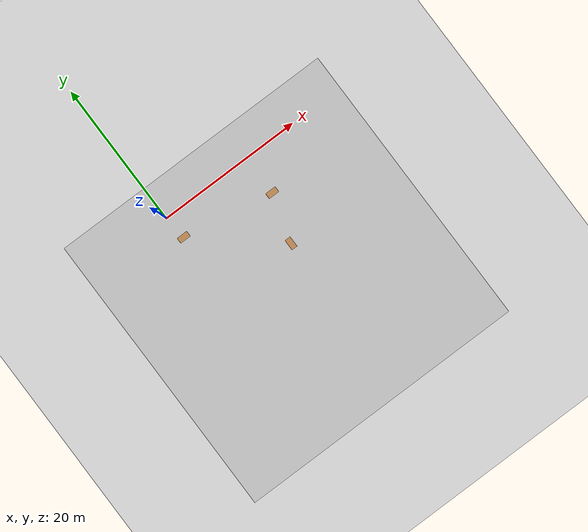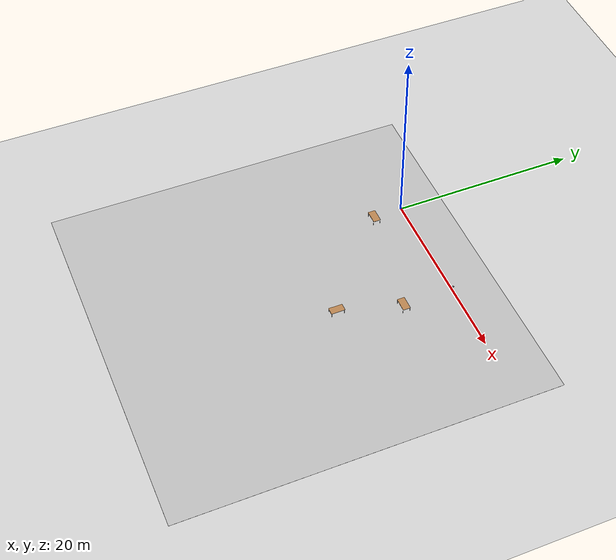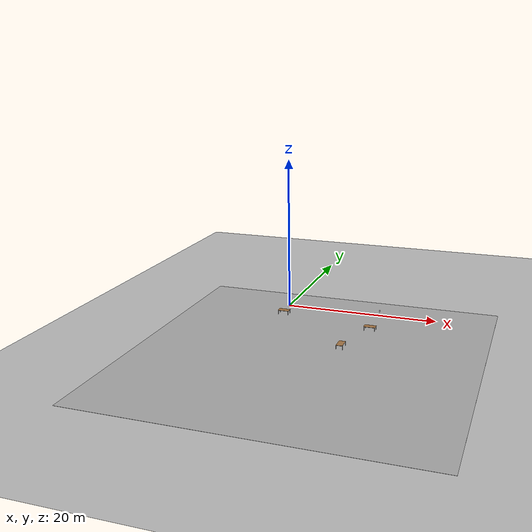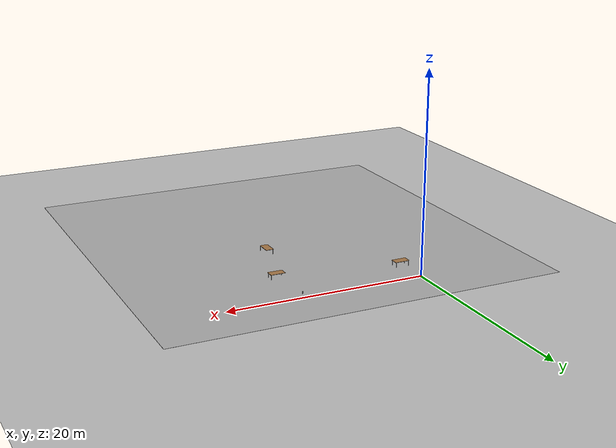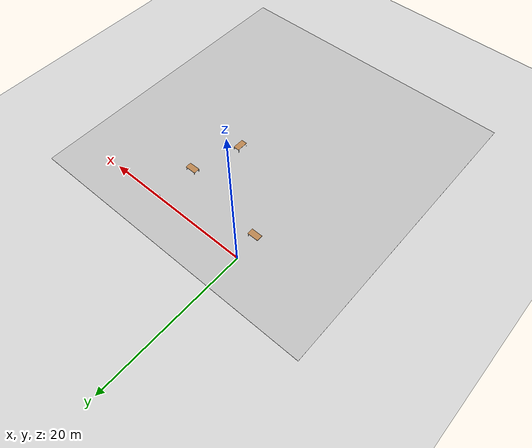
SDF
<sdf version="1.6">
 <world name="default">
  <model name="ground_plane">
   <static>1</static>
   <link name="link">
    <collision name="collision">
     <geometry><plane><normal>0 0 1</normal><size>100 100</size></plane></geometry>
     <surface>
      <contact><collide_bitmask>65535</collide_bitmask></contact>
      <friction><ode><mu>100</mu><mu2>50</mu2></ode></friction>
     </surface>
    </collision>
    <visual name="visual">
     <cast_shadows>0</cast_shadows>
     <geometry><plane><normal>0 0 1</normal><size>100 100</size></plane></geometry>
     <material>
      <script><uri>file://media/materials/scripts/gazebo.material</uri><name>Gazebo/Grey</name></script>
     </material>
    </visual>
   </link>
  </model>
  <model name="table_0">
   <static>1</static>
   <link name="link">
    <collision name="surface">
     <pose>0 0 1 0 -0 0</pose>
     <geometry><box><size>1.5 0.8 0.03</size></box></geometry>
     <surface><friction><ode><mu>0.6</mu><mu2>0.6</mu2></ode></friction></surface>
    </collision>
    <visual name="visual1">
     <pose>0 0 1 0 -0 0</pose>
     <geometry><box><size>1.5 0.8 0.03</size></box></geometry>
     <material>
      <script><uri>file://media/materials/scripts/gazebo.material</uri><name>Gazebo/Wood</name></script>
     </material>
    </visual>
    <collision name="front_left_leg">
     <pose>0.68 0.38 0.5 0 -0 0</pose>
     <geometry><cylinder><radius>0.02</radius><length>1</length></cylinder></geometry>
    </collision>
    <visual name="front_left_leg">
     <pose>0.68 0.38 0.5 0 -0 0</pose>
     <geometry><cylinder><radius>0.02</radius><length>1</length></cylinder></geometry>
     <material>
      <script><uri>file://media/materials/scripts/gazebo.material</uri><name>Gazebo/Grey</name></script>
     </material>
    </visual>
    <collision name="front_right_leg">
     <pose>0.68 -0.38 0.5 0 -0 0</pose>
     <geometry><cylinder><radius>0.02</radius><length>1</length></cylinder></geometry>
    </collision>
    <visual name="front_right_leg">
     <pose>0.68 -0.38 0.5 0 -0 0</pose>
     <geometry><cylinder><radius>0.02</radius><length>1</length></cylinder></geometry>
     <material>
      <script><uri>file://media/materials/scripts/gazebo.material</uri><name>Gazebo/Grey</name></script>
     </material>
    </visual>
    <collision name="back_right_leg">
     <pose>-0.68 -0.38 0.5 0 -0 0</pose>
     <geometry><cylinder><radius>0.02</radius><length>1</length></cylinder></geometry>
    </collision>
    <visual name="back_right_leg">
     <pose>-0.68 -0.38 0.5 0 -0 0</pose>
     <geometry><cylinder><radius>0.02</radius><length>1</length></cylinder></geometry>
     <material>
      <script><uri>file://media/materials/scripts/gazebo.material</uri><name>Gazebo/Grey</name></script>
     </material>
    </visual>
    <collision name="back_left_leg">
     <pose>-0.68 0.38 0.5 0 -0 0</pose>
     <geometry><cylinder><radius>0.02</radius><length>1</length></cylinder></geometry>
    </collision>
    <visual name="back_left_leg">
     <pose>-0.68 0.38 0.5 0 -0 0</pose>
     <geometry><cylinder><radius>0.02</radius><length>1</length></cylinder></geometry>
     <material>
      <script><uri>file://media/materials/scripts/gazebo.material</uri><name>Gazebo/Grey</name></script>
     </material>
    </visual>
   </link>
   <pose>12.597 -5.4864 -0.487257 0 0 -3.14159</pose>
  </model>
  <model name="table_1">
   <static>1</static>
   <link name="link">
    <collision name="surface">
     <pose>0 0 1 0 -0 0</pose>
     <geometry><box><size>1.5 0.8 0.03</size></box></geometry>
     <surface><friction><ode><mu>0.6</mu><mu2>0.6</mu2></ode></friction></surface>
    </collision>
    <visual name="visual1">
     <pose>0 0 1 0 -0 0</pose>
     <geometry><box><size>1.5 0.8 0.03</size></box></geometry>
     <material>
      <script><uri>file://media/materials/scripts/gazebo.material</uri><name>Gazebo/Wood</name></script>
     </material>
    </visual>
    <collision name="front_left_leg">
     <pose>0.68 0.38 0.5 0 -0 0</pose>
     <geometry><cylinder><radius>0.02</radius><length>1</length></cylinder></geometry>
    </collision>
    <visual name="front_left_leg">
     <pose>0.68 0.38 0.5 0 -0 0</pose>
     <geometry><cylinder><radius>0.02</radius><length>1</length></cylinder></geometry>
     <material>
      <script><uri>file://media/materials/scripts/gazebo.material</uri><name>Gazebo/Grey</name></script>
     </material>
    </visual>
    <collision name="front_right_leg">
     <pose>0.68 -0.38 0.5 0 -0 0</pose>
     <geometry><cylinder><radius>0.02</radius><length>1</length></cylinder></geometry>
    </collision>
    <visual name="front_right_leg">
     <pose>0.68 -0.38 0.5 0 -0 0</pose>
     <geometry><cylinder><radius>0.02</radius><length>1</length></cylinder></geometry>
     <material>
      <script><uri>file://media/materials/scripts/gazebo.material</uri><name>Gazebo/Grey</name></script>
     </material>
    </visual>
    <collision name="back_right_leg">
     <pose>-0.68 -0.38 0.5 0 -0 0</pose>
     <geometry><cylinder><radius>0.02</radius><length>1</length></cylinder></geometry>
    </collision>
    <visual name="back_right_leg">
     <pose>-0.68 -0.38 0.5 0 -0 0</pose>
     <geometry><cylinder><radius>0.02</radius><length>1</length></cylinder></geometry>
     <material>
      <script><uri>file://media/materials/scripts/gazebo.material</uri><name>Gazebo/Grey</name></script>
     </material>
    </visual>
    <collision name="back_left_leg">
     <pose>-0.68 0.38 0.5 0 -0 0</pose>
     <geometry><cylinder><radius>0.02</radius><length>1</length></cylinder></geometry>
    </collision>
    <visual name="back_left_leg">
     <pose>-0.68 0.38 0.5 0 -0 0</pose>
     <geometry><cylinder><radius>0.02</radius><length>1</length></cylinder></geometry>
     <material>
      <script><uri>file://media/materials/scripts/gazebo.material</uri><name>Gazebo/Grey</name></script>
     </material>
    </visual>
   </link>
   <pose>10.6555 -11.9996 -0.469083 0 0 -1.5708</pose>
  </model>
  <model name="table_3">
   <static>1</static>
   <link name="link">
    <collision name="surface">
     <pose>0 0 1 0 -0 0</pose>
     <geometry><box><size>1.5 0.8 0.03</size></box></geometry>
     <surface><friction><ode><mu>0.6</mu><mu2>0.6</mu2></ode></friction></surface>
    </collision>
    <visual name="visual1">
     <pose>0 0 1 0 -0 0</pose>
     <geometry><box><size>1.5 0.8 0.03</size></box></geometry>
     <material>
      <script><uri>file://media/materials/scripts/gazebo.material</uri><name>Gazebo/Wood</name></script>
     </material>
    </visual>
    <collision name="front_left_leg">
     <pose>0.68 0.38 0.5 0 -0 0</pose>
     <geometry><cylinder><radius>0.02</radius><length>1</length></cylinder></geometry>
    </collision>
    <visual name="front_left_leg">
     <pose>0.68 0.38 0.5 0 -0 0</pose>
     <geometry><cylinder><radius>0.02</radius><length>1</length></cylinder></geometry>
     <material>
      <script><uri>file://media/materials/scripts/gazebo.material</uri><name>Gazebo/Grey</name></script>
     </material>
    </visual>
    <collision name="front_right_leg">
     <pose>0.68 -0.38 0.5 0 -0 0</pose>
     <geometry><cylinder><radius>0.02</radius><length>1</length></cylinder></geometry>
    </collision>
    <visual name="front_right_leg">
     <pose>0.68 -0.38 0.5 0 -0 0</pose>
     <geometry><cylinder><radius>0.02</radius><length>1</length></cylinder></geometry>
     <material>
      <script><uri>file://media/materials/scripts/gazebo.material</uri><name>Gazebo/Grey</name></script>
     </material>
    </visual>
    <collision name="back_right_leg">
     <pose>-0.68 -0.38 0.5 0 -0 0</pose>
     <geometry><cylinder><radius>0.02</radius><length>1</length></cylinder></geometry>
    </collision>
    <visual name="back_right_leg">
     <pose>-0.68 -0.38 0.5 0 -0 0</pose>
     <geometry><cylinder><radius>0.02</radius><length>1</length></cylinder></geometry>
     <material>
      <script><uri>file://media/materials/scripts/gazebo.material</uri><name>Gazebo/Grey</name></script>
     </material>
    </visual>
    <collision name="back_left_leg">
     <pose>-0.68 0.38 0.5 0 -0 0</pose>
     <geometry><cylinder><radius>0.02</radius><length>1</length></cylinder></geometry>
    </collision>
    <visual name="back_left_leg">
     <pose>-0.68 0.38 0.5 0 -0 0</pose>
     <geometry><cylinder><radius>0.02</radius><length>1</length></cylinder></geometry>
     <material>
      <script><uri>file://media/materials/scripts/gazebo.material</uri><name>Gazebo/Grey</name></script>
     </material>
    </visual>
   </link>
   <pose>0.35285 -3.28393 -0.468106 0 -0 0</pose>
  </model>
  <model name="book_2">
   <link name="cover">
    <pose>0 -0.000108 0.015405 0 -0 0</pose>
    <visual name="visual">
     <geometry><box><size>0.245 0.16 0.03</size></box></geometry>
     <material>
      <script>
       <uri>model://book_2/materials/scripts</uri>
       <uri>model://book_2/materials/textures</uri>
       <name>book_2</name>
      </script>
     </material>
    </visual>
    <collision name="collision"><geometry><box><size>0.245 0.16 0.03</size></box></geometry></collision>
   </link>
   <link name="page">
    <pose>0 0.000608 0.015405 0 -0 0</pose>
    <visual name="visual">
     <geometry><box><size>0.24502 0.15862 0.028</size></box></geometry>
     <material>
      <lighting>1</lighting>
      <ambient>1 1 1 1</ambient>
      <diffuse>1 1 1 1</diffuse>
      <specular>0.01 0.01 0.01 1</specular>
      <emissive>0 0 0 1</emissive>
      <shader type="vertex"><normal_map>__default__</normal_map></shader>
     </material>
    </visual>
    <collision name="collision"><geometry><box><size>0.245 0.16 0.03</size></box></geometry></collision>
   </link>
   <static>1</static>
   <pose>12.553 0.069111 0.594259 -0.781933 -1.57079 3.14159</pose>
  </model>
  <model name="Floor">
   <link name="main">
    <pose>0 0 0.01 0 -0 0</pose>
    <collision name="main_Collision"><geometry><box><size>40 40 0.01</size></box></geometry></collision>
    <visual name="main_Visual">
     <geometry><box><size>40 40 0.01</size></box></geometry>
     <material>
      <script>
       <uri>model://Floor/materials/scripts</uri>
       <uri>model://Floor/materials/textures</uri>
       <name>floor</name>
      </script>
     </material>
    </visual>
   </link>
   <static>1</static>
   <pose>7.43525 -15.3102 0 0 -0 0</pose>
  </model>
 </world>
</sdf>
